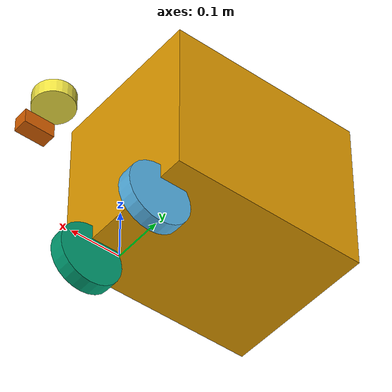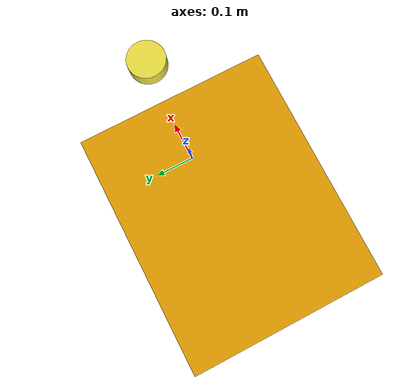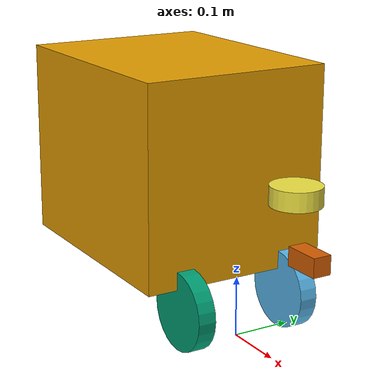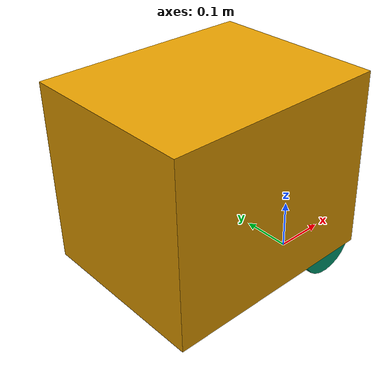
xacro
<?xml version="1.0"?>
<robot name="helper_robot" xmlns:xacro="http://www.ros.org/wiki/xacro">

  <xacro:property name="wheel_radius" value="0.065"/>
  <xacro:property name="wheel_width" value="0.03"/>
  <!-- Measured drive-wheel center spacing; wheels sit inside the body shell. -->
  <xacro:property name="track_width" value="0.190"/>

  <xacro:property name="base_length" value="0.400"/>
  <xacro:property name="base_width" value="0.320"/>
  <xacro:property name="base_height" value="0.330"/>
  <xacro:property name="base_mass" value="12.0"/>

  <xacro:property name="wheel_mass" value="0.6"/>
  <xacro:property name="sensor_mass" value="0.15"/>
  <xacro:property name="camera_mass" value="0.1"/>

  <xacro:macro name="box_inertial" params="mass x y z">
    <inertial>
      <origin xyz="0 0 0" rpy="0 0 0"/>
      <mass value="${mass}"/>
      <inertia
        ixx="${mass * (y * y + z * z) / 12.0}"
        ixy="0"
        ixz="0"
        iyy="${mass * (x * x + z * z) / 12.0}"
        iyz="0"
        izz="${mass * (x * x + y * y) / 12.0}"/>
    </inertial>
  </xacro:macro>

  <xacro:macro name="cylinder_inertial_y" params="mass radius length">
    <inertial>
      <origin xyz="0 0 0" rpy="0 0 0"/>
      <mass value="${mass}"/>
      <inertia
        ixx="${mass * (3.0 * radius * radius + length * length) / 12.0}"
        ixy="0"
        ixz="0"
        iyy="${mass * radius * radius / 2.0}"
        iyz="0"
        izz="${mass * (3.0 * radius * radius + length * length) / 12.0}"/>
    </inertial>
  </xacro:macro>

  <xacro:macro name="cylinder_inertial_z" params="mass radius length">
    <inertial>
      <origin xyz="0 0 0" rpy="0 0 0"/>
      <mass value="${mass}"/>
      <inertia
        ixx="${mass * (3.0 * radius * radius + length * length) / 12.0}"
        ixy="0"
        ixz="0"
        iyy="${mass * (3.0 * radius * radius + length * length) / 12.0}"
        iyz="0"
        izz="${mass * radius * radius / 2.0}"/>
    </inertial>
  </xacro:macro>

  <xacro:macro name="drive_wheel" params="side y">
    <link name="${side}_wheel">
      <visual>
        <origin xyz="0 0 0" rpy="${pi / 2.0} 0 0"/>
        <geometry>
          <cylinder radius="${wheel_radius}" length="${wheel_width}"/>
        </geometry>
      </visual>
      <collision>
        <origin xyz="0 0 0" rpy="${pi / 2.0} 0 0"/>
        <geometry>
          <cylinder radius="${wheel_radius}" length="${wheel_width}"/>
        </geometry>
      </collision>
      <xacro:cylinder_inertial_y mass="${wheel_mass}" radius="${wheel_radius}" length="${wheel_width}"/>
    </link>

    <joint name="${side}_wheel_joint" type="continuous">
      <parent link="base_link"/>
      <child link="${side}_wheel"/>
      <origin xyz="0 ${y} ${wheel_radius}" rpy="0 0 0"/>
      <axis xyz="0 1 0"/>
    </joint>
  </xacro:macro>

  <!-- base_link: 전륜 좌우 구동바퀴 중심 중간점 -->
  <link name="base_link">
    <visual>
      <origin xyz="-0.2 0 0.265" rpy="0 0 0"/>
      <geometry>
        <box size="${base_length} ${base_width} ${base_height}"/>
      </geometry>
    </visual>
    <collision>
      <origin xyz="-0.2 0 0.265" rpy="0 0 0"/>
      <geometry>
        <box size="${base_length} ${base_width} ${base_height}"/>
      </geometry>
    </collision>
    <xacro:box_inertial mass="${base_mass}" x="${base_length}" y="${base_width}" z="${base_height}"/>
  </link>

  <xacro:drive_wheel side="left" y="${track_width / 2.0}"/>
  <xacro:drive_wheel side="right" y="${-track_width / 2.0}"/>

  <!-- front lidar -->
  <link name="laser_front">
    <visual>
      <geometry>
        <cylinder radius="0.04" length="0.03"/>
      </geometry>
    </visual>
    <collision>
      <geometry>
        <cylinder radius="0.04" length="0.03"/>
      </geometry>
    </collision>
    <xacro:cylinder_inertial_z mass="${sensor_mass}" radius="0.04" length="0.03"/>
  </link>

  <joint name="laser_front_joint" type="fixed">
    <parent link="base_link"/>
    <child link="laser_front"/>
    <origin xyz="0.149 0 0.2772" rpy="0 0 3.14159"/>
  </joint>

  <!-- rear lidar -->
  <link name="laser_rear">
    <visual>
      <geometry>
        <cylinder radius="0.04" length="0.03"/>
      </geometry>
    </visual>
    <collision>
      <geometry>
        <cylinder radius="0.04" length="0.03"/>
      </geometry>
    </collision>
    <xacro:cylinder_inertial_z mass="${sensor_mass}" radius="0.04" length="0.03"/>
  </link>

  <joint name="laser_rear_joint" type="fixed">
    <parent link="base_link"/>
    <child link="laser_rear"/>
    <origin xyz="-0.149 0 0.2772" rpy="0 0 3.14159"/>
  </joint>

  <!-- depth camera -->
  <link name="depth_camera_link">
    <visual>
      <geometry>
        <box size="0.06 0.03 0.03"/>
      </geometry>
    </visual>
    <collision>
      <geometry>
        <box size="0.06 0.03 0.03"/>
      </geometry>
    </collision>
    <xacro:box_inertial mass="${camera_mass}" x="0.06" y="0.03" z="0.03"/>
  </link>

  <joint name="depth_camera_joint" type="fixed">
    <parent link="base_link"/>
    <child link="depth_camera_link"/>
    <origin xyz="0.1847 0 0.1889" rpy="0 0 0"/>
  </joint>

  <!-- Attach the depth-camera driver's TF tree at its camera_link root. -->
  <link name="camera_link"/>

  <joint name="depth_camera_driver_joint" type="fixed">
    <parent link="depth_camera_link"/>
    <child link="camera_link"/>
    <origin xyz="0 0 0" rpy="0 0 0"/>
  </joint>

  <!-- rgb webcam -->

</robot>
